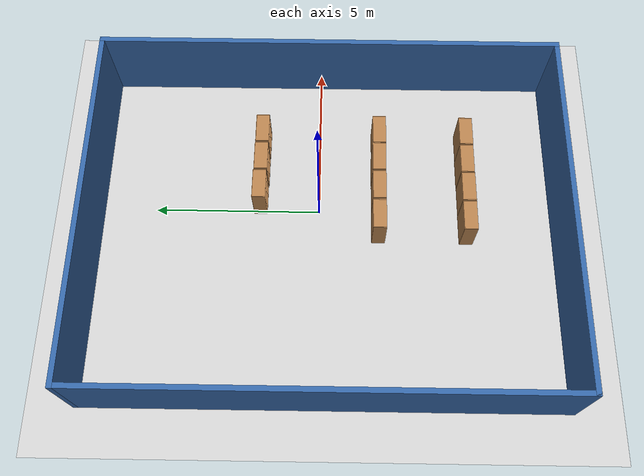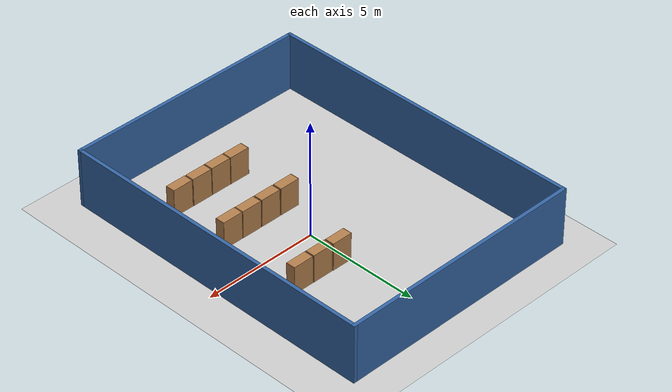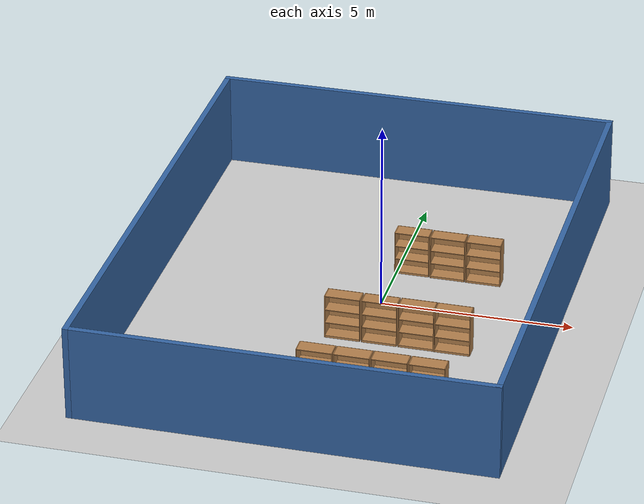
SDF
<sdf version="1.6">
 <world name="default">
  <model name="ground_plane">
   <static>1</static>
   <link name="link">
    <collision name="collision">
     <geometry><plane><normal>0 0 1</normal><size>100 100</size></plane></geometry>
     <surface><friction><ode><mu>100</mu><mu2>50</mu2></ode></friction></surface>
    </collision>
    <visual name="visual">
     <cast_shadows>0</cast_shadows>
     <geometry><plane><normal>0 0 1</normal><size>100 100</size></plane></geometry>
     <material>
      <script><uri>file://media/materials/scripts/gazebo.material</uri><name>Gazebo/Grey</name></script>
     </material>
    </visual>
   </link>
  </model>
  <model name="blue_shop">
   <pose>-0.705855 -0.24083 0 0 -0 0</pose>
   <link name="Wall_2">
    <collision name="Wall_2_Collision">
     <geometry><box><size>10.75 0.15 2.5</size></box></geometry>
     <pose>0 0 1.25 0 -0 0</pose>
    </collision>
    <visual name="Wall_2_Visual">
     <pose>0 0 1.25 0 -0 0</pose>
     <geometry><box><size>10.75 0.15 2.5</size></box></geometry>
     <material>
      <script><uri>file://media/materials/scripts/gazebo.material</uri><name>Gazebo/Grey</name></script>
      <ambient>0.203922 0.396078 0.643137 1</ambient>
     </material>
     <meta><layer>0</layer></meta>
    </visual>
    <pose>-0 6.925 0 0 -0 3.14159</pose>
   </link>
   <link name="Wall_3">
    <collision name="Wall_3_Collision">
     <geometry><box><size>14 0.15 2.5</size></box></geometry>
     <pose>0 0 1.25 0 -0 0</pose>
    </collision>
    <visual name="Wall_3_Visual">
     <pose>0 0 1.25 0 -0 0</pose>
     <geometry><box><size>14 0.15 2.5</size></box></geometry>
     <material>
      <script><uri>file://media/materials/scripts/gazebo.material</uri><name>Gazebo/Grey</name></script>
      <ambient>0.203922 0.396078 0.643137 1</ambient>
     </material>
     <meta><layer>0</layer></meta>
    </visual>
    <pose>-5.3 0 0 0 -0 -1.5708</pose>
   </link>
   <link name="Wall_6">
    <collision name="Wall_6_Collision">
     <geometry><box><size>14 0.15 2.5</size></box></geometry>
     <pose>0 0 1.25 0 -0 0</pose>
    </collision>
    <visual name="Wall_6_Visual">
     <pose>0 0 1.25 0 -0 0</pose>
     <geometry><box><size>14 0.15 2.5</size></box></geometry>
     <material>
      <script><uri>file://media/materials/scripts/gazebo.material</uri><name>Gazebo/Grey</name></script>
      <ambient>0.203922 0.396078 0.643137 1</ambient>
     </material>
     <meta><layer>0</layer></meta>
    </visual>
    <pose>5.3 0 0 0 -0 -1.5708</pose>
   </link>
   <link name="Wall_7">
    <collision name="Wall_7_Collision">
     <geometry><box><size>10.75 0.15 2.5</size></box></geometry>
     <pose>0 0 1.25 0 -0 0</pose>
    </collision>
    <visual name="Wall_7_Visual">
     <pose>0 0 1.25 0 -0 0</pose>
     <geometry><box><size>10.75 0.15 2.5</size></box></geometry>
     <material>
      <script><uri>file://media/materials/scripts/gazebo.material</uri><name>Gazebo/Grey</name></script>
      <ambient>0.203922 0.396078 0.643137 1</ambient>
     </material>
     <meta><layer>0</layer></meta>
    </visual>
    <pose>-0 -6.925 0 0 -0 3.14159</pose>
   </link>
   <static>1</static>
  </model>
  <model name="bookshelf_3_clone_0">
   <static>1</static>
   <link name="link">
    <inertial><mass>1</mass></inertial>
    <collision name="back">
     <pose>0 0.005 0.6 0 -0 0</pose>
     <geometry><box><size>0.9 0.01 1.2</size></box></geometry>
    </collision>
    <visual name="visual1">
     <pose>0 0.005 0.6 0 -0 0</pose>
     <geometry><box><size>0.9 0.01 1.2</size></box></geometry>
     <material>
      <script><uri>file://media/materials/scripts/gazebo.material</uri><name>Gazebo/Wood</name></script>
     </material>
    </visual>
    <collision name="left_side">
     <pose>0.45 -0.195 0.6 0 -0 0</pose>
     <geometry><box><size>0.02 0.4 1.2</size></box></geometry>
    </collision>
    <visual name="visual2">
     <pose>0.45 -0.195 0.6 0 -0 0</pose>
     <geometry><box><size>0.02 0.4 1.2</size></box></geometry>
     <material>
      <script><uri>file://media/materials/scripts/gazebo.material</uri><name>Gazebo/Wood</name></script>
     </material>
    </visual>
    <collision name="right_side">
     <pose>-0.45 -0.195 0.6 0 -0 0</pose>
     <geometry><box><size>0.02 0.4 1.2</size></box></geometry>
    </collision>
    <visual name="visual3">
     <pose>-0.45 -0.195 0.6 0 -0 0</pose>
     <geometry><box><size>0.02 0.4 1.2</size></box></geometry>
     <material>
      <script><uri>file://media/materials/scripts/gazebo.material</uri><name>Gazebo/Wood</name></script>
     </material>
    </visual>
    <collision name="bottom">
     <pose>0 -0.195 0.03 0 -0 0</pose>
     <geometry><box><size>0.88 0.4 0.06</size></box></geometry>
    </collision>
    <visual name="visual4">
     <pose>0 -0.195 0.03 0 -0 0</pose>
     <geometry><box><size>0.88 0.4 0.06</size></box></geometry>
     <material>
      <script><uri>file://media/materials/scripts/gazebo.material</uri><name>Gazebo/Wood</name></script>
     </material>
    </visual>
    <collision name="top">
     <pose>0 -0.195 1.19 0 -0 0</pose>
     <geometry><box><size>0.88 0.4 0.02</size></box></geometry>
    </collision>
    <visual name="visual5">
     <pose>0 -0.195 1.19 0 -0 0</pose>
     <geometry><box><size>0.88 0.4 0.02</size></box></geometry>
     <material>
      <script><uri>file://media/materials/scripts/gazebo.material</uri><name>Gazebo/Wood</name></script>
     </material>
    </visual>
    <collision name="low_shelf">
     <pose>0 -0.195 0.43 0 -0 0</pose>
     <geometry><box><size>0.88 0.4 0.02</size></box></geometry>
    </collision>
    <visual name="visual6">
     <pose>0 -0.195 0.43 0 -0 0</pose>
     <geometry><box><size>0.88 0.4 0.02</size></box></geometry>
     <material>
      <script><uri>file://media/materials/scripts/gazebo.material</uri><name>Gazebo/Wood</name></script>
     </material>
    </visual>
    <collision name="high_shelf">
     <pose>0 -0.195 0.8 0 -0 0</pose>
     <geometry><box><size>0.88 0.4 0.02</size></box></geometry>
    </collision>
    <visual name="visual7">
     <pose>0 -0.195 0.8 0 -0 0</pose>
     <geometry><box><size>0.88 0.4 0.02</size></box></geometry>
     <material>
      <script><uri>file://media/materials/scripts/gazebo.material</uri><name>Gazebo/Wood</name></script>
     </material>
    </visual>
   </link>
   <pose>0.403486 1.98927 0 0 -0 0</pose>
  </model>
  <model name="bookshelf_3_clone_1">
   <static>1</static>
   <link name="link">
    <inertial><mass>1</mass></inertial>
    <collision name="back">
     <pose>0 0.005 0.6 0 -0 0</pose>
     <geometry><box><size>0.9 0.01 1.2</size></box></geometry>
    </collision>
    <visual name="visual1">
     <pose>0 0.005 0.6 0 -0 0</pose>
     <geometry><box><size>0.9 0.01 1.2</size></box></geometry>
     <material>
      <script><uri>file://media/materials/scripts/gazebo.material</uri><name>Gazebo/Wood</name></script>
     </material>
    </visual>
    <collision name="left_side">
     <pose>0.45 -0.195 0.6 0 -0 0</pose>
     <geometry><box><size>0.02 0.4 1.2</size></box></geometry>
    </collision>
    <visual name="visual2">
     <pose>0.45 -0.195 0.6 0 -0 0</pose>
     <geometry><box><size>0.02 0.4 1.2</size></box></geometry>
     <material>
      <script><uri>file://media/materials/scripts/gazebo.material</uri><name>Gazebo/Wood</name></script>
     </material>
    </visual>
    <collision name="right_side">
     <pose>-0.45 -0.195 0.6 0 -0 0</pose>
     <geometry><box><size>0.02 0.4 1.2</size></box></geometry>
    </collision>
    <visual name="visual3">
     <pose>-0.45 -0.195 0.6 0 -0 0</pose>
     <geometry><box><size>0.02 0.4 1.2</size></box></geometry>
     <material>
      <script><uri>file://media/materials/scripts/gazebo.material</uri><name>Gazebo/Wood</name></script>
     </material>
    </visual>
    <collision name="bottom">
     <pose>0 -0.195 0.03 0 -0 0</pose>
     <geometry><box><size>0.88 0.4 0.06</size></box></geometry>
    </collision>
    <visual name="visual4">
     <pose>0 -0.195 0.03 0 -0 0</pose>
     <geometry><box><size>0.88 0.4 0.06</size></box></geometry>
     <material>
      <script><uri>file://media/materials/scripts/gazebo.material</uri><name>Gazebo/Wood</name></script>
     </material>
    </visual>
    <collision name="top">
     <pose>0 -0.195 1.19 0 -0 0</pose>
     <geometry><box><size>0.88 0.4 0.02</size></box></geometry>
    </collision>
    <visual name="visual5">
     <pose>0 -0.195 1.19 0 -0 0</pose>
     <geometry><box><size>0.88 0.4 0.02</size></box></geometry>
     <material>
      <script><uri>file://media/materials/scripts/gazebo.material</uri><name>Gazebo/Wood</name></script>
     </material>
    </visual>
    <collision name="low_shelf">
     <pose>0 -0.195 0.43 0 -0 0</pose>
     <geometry><box><size>0.88 0.4 0.02</size></box></geometry>
    </collision>
    <visual name="visual6">
     <pose>0 -0.195 0.43 0 -0 0</pose>
     <geometry><box><size>0.88 0.4 0.02</size></box></geometry>
     <material>
      <script><uri>file://media/materials/scripts/gazebo.material</uri><name>Gazebo/Wood</name></script>
     </material>
    </visual>
    <collision name="high_shelf">
     <pose>0 -0.195 0.8 0 -0 0</pose>
     <geometry><box><size>0.88 0.4 0.02</size></box></geometry>
    </collision>
    <visual name="visual7">
     <pose>0 -0.195 0.8 0 -0 0</pose>
     <geometry><box><size>0.88 0.4 0.02</size></box></geometry>
     <material>
      <script><uri>file://media/materials/scripts/gazebo.material</uri><name>Gazebo/Wood</name></script>
     </material>
    </visual>
   </link>
   <pose>1.35521 1.97356 0 0 -0 0</pose>
  </model>
  <model name="bookshelf_3_clone_2">
   <static>1</static>
   <link name="link">
    <inertial><mass>1</mass></inertial>
    <collision name="back">
     <pose>0 0.005 0.6 0 -0 0</pose>
     <geometry><box><size>0.9 0.01 1.2</size></box></geometry>
    </collision>
    <visual name="visual1">
     <pose>0 0.005 0.6 0 -0 0</pose>
     <geometry><box><size>0.9 0.01 1.2</size></box></geometry>
     <material>
      <script><uri>file://media/materials/scripts/gazebo.material</uri><name>Gazebo/Wood</name></script>
     </material>
    </visual>
    <collision name="left_side">
     <pose>0.45 -0.195 0.6 0 -0 0</pose>
     <geometry><box><size>0.02 0.4 1.2</size></box></geometry>
    </collision>
    <visual name="visual2">
     <pose>0.45 -0.195 0.6 0 -0 0</pose>
     <geometry><box><size>0.02 0.4 1.2</size></box></geometry>
     <material>
      <script><uri>file://media/materials/scripts/gazebo.material</uri><name>Gazebo/Wood</name></script>
     </material>
    </visual>
    <collision name="right_side">
     <pose>-0.45 -0.195 0.6 0 -0 0</pose>
     <geometry><box><size>0.02 0.4 1.2</size></box></geometry>
    </collision>
    <visual name="visual3">
     <pose>-0.45 -0.195 0.6 0 -0 0</pose>
     <geometry><box><size>0.02 0.4 1.2</size></box></geometry>
     <material>
      <script><uri>file://media/materials/scripts/gazebo.material</uri><name>Gazebo/Wood</name></script>
     </material>
    </visual>
    <collision name="bottom">
     <pose>0 -0.195 0.03 0 -0 0</pose>
     <geometry><box><size>0.88 0.4 0.06</size></box></geometry>
    </collision>
    <visual name="visual4">
     <pose>0 -0.195 0.03 0 -0 0</pose>
     <geometry><box><size>0.88 0.4 0.06</size></box></geometry>
     <material>
      <script><uri>file://media/materials/scripts/gazebo.material</uri><name>Gazebo/Wood</name></script>
     </material>
    </visual>
    <collision name="top">
     <pose>0 -0.195 1.19 0 -0 0</pose>
     <geometry><box><size>0.88 0.4 0.02</size></box></geometry>
    </collision>
    <visual name="visual5">
     <pose>0 -0.195 1.19 0 -0 0</pose>
     <geometry><box><size>0.88 0.4 0.02</size></box></geometry>
     <material>
      <script><uri>file://media/materials/scripts/gazebo.material</uri><name>Gazebo/Wood</name></script>
     </material>
    </visual>
    <collision name="low_shelf">
     <pose>0 -0.195 0.43 0 -0 0</pose>
     <geometry><box><size>0.88 0.4 0.02</size></box></geometry>
    </collision>
    <visual name="visual6">
     <pose>0 -0.195 0.43 0 -0 0</pose>
     <geometry><box><size>0.88 0.4 0.02</size></box></geometry>
     <material>
      <script><uri>file://media/materials/scripts/gazebo.material</uri><name>Gazebo/Wood</name></script>
     </material>
    </visual>
    <collision name="high_shelf">
     <pose>0 -0.195 0.8 0 -0 0</pose>
     <geometry><box><size>0.88 0.4 0.02</size></box></geometry>
    </collision>
    <visual name="visual7">
     <pose>0 -0.195 0.8 0 -0 0</pose>
     <geometry><box><size>0.88 0.4 0.02</size></box></geometry>
     <material>
      <script><uri>file://media/materials/scripts/gazebo.material</uri><name>Gazebo/Wood</name></script>
     </material>
    </visual>
   </link>
   <pose>2.30568 1.96612 0 0 -0 0</pose>
  </model>
  <model name="bookshelf_3_clone_3">
   <static>1</static>
   <link name="link">
    <inertial><mass>1</mass></inertial>
    <collision name="back">
     <pose>0 0.005 0.6 0 -0 0</pose>
     <geometry><box><size>0.9 0.01 1.2</size></box></geometry>
    </collision>
    <visual name="visual1">
     <pose>0 0.005 0.6 0 -0 0</pose>
     <geometry><box><size>0.9 0.01 1.2</size></box></geometry>
     <material>
      <script><uri>file://media/materials/scripts/gazebo.material</uri><name>Gazebo/Wood</name></script>
     </material>
    </visual>
    <collision name="left_side">
     <pose>0.45 -0.195 0.6 0 -0 0</pose>
     <geometry><box><size>0.02 0.4 1.2</size></box></geometry>
    </collision>
    <visual name="visual2">
     <pose>0.45 -0.195 0.6 0 -0 0</pose>
     <geometry><box><size>0.02 0.4 1.2</size></box></geometry>
     <material>
      <script><uri>file://media/materials/scripts/gazebo.material</uri><name>Gazebo/Wood</name></script>
     </material>
    </visual>
    <collision name="right_side">
     <pose>-0.45 -0.195 0.6 0 -0 0</pose>
     <geometry><box><size>0.02 0.4 1.2</size></box></geometry>
    </collision>
    <visual name="visual3">
     <pose>-0.45 -0.195 0.6 0 -0 0</pose>
     <geometry><box><size>0.02 0.4 1.2</size></box></geometry>
     <material>
      <script><uri>file://media/materials/scripts/gazebo.material</uri><name>Gazebo/Wood</name></script>
     </material>
    </visual>
    <collision name="bottom">
     <pose>0 -0.195 0.03 0 -0 0</pose>
     <geometry><box><size>0.88 0.4 0.06</size></box></geometry>
    </collision>
    <visual name="visual4">
     <pose>0 -0.195 0.03 0 -0 0</pose>
     <geometry><box><size>0.88 0.4 0.06</size></box></geometry>
     <material>
      <script><uri>file://media/materials/scripts/gazebo.material</uri><name>Gazebo/Wood</name></script>
     </material>
    </visual>
    <collision name="top">
     <pose>0 -0.195 1.19 0 -0 0</pose>
     <geometry><box><size>0.88 0.4 0.02</size></box></geometry>
    </collision>
    <visual name="visual5">
     <pose>0 -0.195 1.19 0 -0 0</pose>
     <geometry><box><size>0.88 0.4 0.02</size></box></geometry>
     <material>
      <script><uri>file://media/materials/scripts/gazebo.material</uri><name>Gazebo/Wood</name></script>
     </material>
    </visual>
    <collision name="low_shelf">
     <pose>0 -0.195 0.43 0 -0 0</pose>
     <geometry><box><size>0.88 0.4 0.02</size></box></geometry>
    </collision>
    <visual name="visual6">
     <pose>0 -0.195 0.43 0 -0 0</pose>
     <geometry><box><size>0.88 0.4 0.02</size></box></geometry>
     <material>
      <script><uri>file://media/materials/scripts/gazebo.material</uri><name>Gazebo/Wood</name></script>
     </material>
    </visual>
    <collision name="high_shelf">
     <pose>0 -0.195 0.8 0 -0 0</pose>
     <geometry><box><size>0.88 0.4 0.02</size></box></geometry>
    </collision>
    <visual name="visual7">
     <pose>0 -0.195 0.8 0 -0 0</pose>
     <geometry><box><size>0.88 0.4 0.02</size></box></geometry>
     <material>
      <script><uri>file://media/materials/scripts/gazebo.material</uri><name>Gazebo/Wood</name></script>
     </material>
    </visual>
   </link>
   <pose>-0.527381 -1.61565 0 0 -0 0</pose>
  </model>
  <model name="bookshelf_3_clone_4">
   <static>1</static>
   <link name="link">
    <inertial><mass>1</mass></inertial>
    <collision name="back">
     <pose>0 0.005 0.6 0 -0 0</pose>
     <geometry><box><size>0.9 0.01 1.2</size></box></geometry>
    </collision>
    <visual name="visual1">
     <pose>0 0.005 0.6 0 -0 0</pose>
     <geometry><box><size>0.9 0.01 1.2</size></box></geometry>
     <material>
      <script><uri>file://media/materials/scripts/gazebo.material</uri><name>Gazebo/Wood</name></script>
     </material>
    </visual>
    <collision name="left_side">
     <pose>0.45 -0.195 0.6 0 -0 0</pose>
     <geometry><box><size>0.02 0.4 1.2</size></box></geometry>
    </collision>
    <visual name="visual2">
     <pose>0.45 -0.195 0.6 0 -0 0</pose>
     <geometry><box><size>0.02 0.4 1.2</size></box></geometry>
     <material>
      <script><uri>file://media/materials/scripts/gazebo.material</uri><name>Gazebo/Wood</name></script>
     </material>
    </visual>
    <collision name="right_side">
     <pose>-0.45 -0.195 0.6 0 -0 0</pose>
     <geometry><box><size>0.02 0.4 1.2</size></box></geometry>
    </collision>
    <visual name="visual3">
     <pose>-0.45 -0.195 0.6 0 -0 0</pose>
     <geometry><box><size>0.02 0.4 1.2</size></box></geometry>
     <material>
      <script><uri>file://media/materials/scripts/gazebo.material</uri><name>Gazebo/Wood</name></script>
     </material>
    </visual>
    <collision name="bottom">
     <pose>0 -0.195 0.03 0 -0 0</pose>
     <geometry><box><size>0.88 0.4 0.06</size></box></geometry>
    </collision>
    <visual name="visual4">
     <pose>0 -0.195 0.03 0 -0 0</pose>
     <geometry><box><size>0.88 0.4 0.06</size></box></geometry>
     <material>
      <script><uri>file://media/materials/scripts/gazebo.material</uri><name>Gazebo/Wood</name></script>
     </material>
    </visual>
    <collision name="top">
     <pose>0 -0.195 1.19 0 -0 0</pose>
     <geometry><box><size>0.88 0.4 0.02</size></box></geometry>
    </collision>
    <visual name="visual5">
     <pose>0 -0.195 1.19 0 -0 0</pose>
     <geometry><box><size>0.88 0.4 0.02</size></box></geometry>
     <material>
      <script><uri>file://media/materials/scripts/gazebo.material</uri><name>Gazebo/Wood</name></script>
     </material>
    </visual>
    <collision name="low_shelf">
     <pose>0 -0.195 0.43 0 -0 0</pose>
     <geometry><box><size>0.88 0.4 0.02</size></box></geometry>
    </collision>
    <visual name="visual6">
     <pose>0 -0.195 0.43 0 -0 0</pose>
     <geometry><box><size>0.88 0.4 0.02</size></box></geometry>
     <material>
      <script><uri>file://media/materials/scripts/gazebo.material</uri><name>Gazebo/Wood</name></script>
     </material>
    </visual>
    <collision name="high_shelf">
     <pose>0 -0.195 0.8 0 -0 0</pose>
     <geometry><box><size>0.88 0.4 0.02</size></box></geometry>
    </collision>
    <visual name="visual7">
     <pose>0 -0.195 0.8 0 -0 0</pose>
     <geometry><box><size>0.88 0.4 0.02</size></box></geometry>
     <material>
      <script><uri>file://media/materials/scripts/gazebo.material</uri><name>Gazebo/Wood</name></script>
     </material>
    </visual>
   </link>
   <pose>0.429459 -1.61727 0 0 -0 0</pose>
  </model>
  <model name="bookshelf_3_clone_5">
   <static>1</static>
   <link name="link">
    <inertial><mass>1</mass></inertial>
    <collision name="back">
     <pose>0 0.005 0.6 0 -0 0</pose>
     <geometry><box><size>0.9 0.01 1.2</size></box></geometry>
    </collision>
    <visual name="visual1">
     <pose>0 0.005 0.6 0 -0 0</pose>
     <geometry><box><size>0.9 0.01 1.2</size></box></geometry>
     <material>
      <script><uri>file://media/materials/scripts/gazebo.material</uri><name>Gazebo/Wood</name></script>
     </material>
    </visual>
    <collision name="left_side">
     <pose>0.45 -0.195 0.6 0 -0 0</pose>
     <geometry><box><size>0.02 0.4 1.2</size></box></geometry>
    </collision>
    <visual name="visual2">
     <pose>0.45 -0.195 0.6 0 -0 0</pose>
     <geometry><box><size>0.02 0.4 1.2</size></box></geometry>
     <material>
      <script><uri>file://media/materials/scripts/gazebo.material</uri><name>Gazebo/Wood</name></script>
     </material>
    </visual>
    <collision name="right_side">
     <pose>-0.45 -0.195 0.6 0 -0 0</pose>
     <geometry><box><size>0.02 0.4 1.2</size></box></geometry>
    </collision>
    <visual name="visual3">
     <pose>-0.45 -0.195 0.6 0 -0 0</pose>
     <geometry><box><size>0.02 0.4 1.2</size></box></geometry>
     <material>
      <script><uri>file://media/materials/scripts/gazebo.material</uri><name>Gazebo/Wood</name></script>
     </material>
    </visual>
    <collision name="bottom">
     <pose>0 -0.195 0.03 0 -0 0</pose>
     <geometry><box><size>0.88 0.4 0.06</size></box></geometry>
    </collision>
    <visual name="visual4">
     <pose>0 -0.195 0.03 0 -0 0</pose>
     <geometry><box><size>0.88 0.4 0.06</size></box></geometry>
     <material>
      <script><uri>file://media/materials/scripts/gazebo.material</uri><name>Gazebo/Wood</name></script>
     </material>
    </visual>
    <collision name="top">
     <pose>0 -0.195 1.19 0 -0 0</pose>
     <geometry><box><size>0.88 0.4 0.02</size></box></geometry>
    </collision>
    <visual name="visual5">
     <pose>0 -0.195 1.19 0 -0 0</pose>
     <geometry><box><size>0.88 0.4 0.02</size></box></geometry>
     <material>
      <script><uri>file://media/materials/scripts/gazebo.material</uri><name>Gazebo/Wood</name></script>
     </material>
    </visual>
    <collision name="low_shelf">
     <pose>0 -0.195 0.43 0 -0 0</pose>
     <geometry><box><size>0.88 0.4 0.02</size></box></geometry>
    </collision>
    <visual name="visual6">
     <pose>0 -0.195 0.43 0 -0 0</pose>
     <geometry><box><size>0.88 0.4 0.02</size></box></geometry>
     <material>
      <script><uri>file://media/materials/scripts/gazebo.material</uri><name>Gazebo/Wood</name></script>
     </material>
    </visual>
    <collision name="high_shelf">
     <pose>0 -0.195 0.8 0 -0 0</pose>
     <geometry><box><size>0.88 0.4 0.02</size></box></geometry>
    </collision>
    <visual name="visual7">
     <pose>0 -0.195 0.8 0 -0 0</pose>
     <geometry><box><size>0.88 0.4 0.02</size></box></geometry>
     <material>
      <script><uri>file://media/materials/scripts/gazebo.material</uri><name>Gazebo/Wood</name></script>
     </material>
    </visual>
   </link>
   <pose>1.37902 -1.61761 0 0 -0 0</pose>
  </model>
  <model name="bookshelf_3_clone_6">
   <static>1</static>
   <link name="link">
    <inertial><mass>1</mass></inertial>
    <collision name="back">
     <pose>0 0.005 0.6 0 -0 0</pose>
     <geometry><box><size>0.9 0.01 1.2</size></box></geometry>
    </collision>
    <visual name="visual1">
     <pose>0 0.005 0.6 0 -0 0</pose>
     <geometry><box><size>0.9 0.01 1.2</size></box></geometry>
     <material>
      <script><uri>file://media/materials/scripts/gazebo.material</uri><name>Gazebo/Wood</name></script>
     </material>
    </visual>
    <collision name="left_side">
     <pose>0.45 -0.195 0.6 0 -0 0</pose>
     <geometry><box><size>0.02 0.4 1.2</size></box></geometry>
    </collision>
    <visual name="visual2">
     <pose>0.45 -0.195 0.6 0 -0 0</pose>
     <geometry><box><size>0.02 0.4 1.2</size></box></geometry>
     <material>
      <script><uri>file://media/materials/scripts/gazebo.material</uri><name>Gazebo/Wood</name></script>
     </material>
    </visual>
    <collision name="right_side">
     <pose>-0.45 -0.195 0.6 0 -0 0</pose>
     <geometry><box><size>0.02 0.4 1.2</size></box></geometry>
    </collision>
    <visual name="visual3">
     <pose>-0.45 -0.195 0.6 0 -0 0</pose>
     <geometry><box><size>0.02 0.4 1.2</size></box></geometry>
     <material>
      <script><uri>file://media/materials/scripts/gazebo.material</uri><name>Gazebo/Wood</name></script>
     </material>
    </visual>
    <collision name="bottom">
     <pose>0 -0.195 0.03 0 -0 0</pose>
     <geometry><box><size>0.88 0.4 0.06</size></box></geometry>
    </collision>
    <visual name="visual4">
     <pose>0 -0.195 0.03 0 -0 0</pose>
     <geometry><box><size>0.88 0.4 0.06</size></box></geometry>
     <material>
      <script><uri>file://media/materials/scripts/gazebo.material</uri><name>Gazebo/Wood</name></script>
     </material>
    </visual>
    <collision name="top">
     <pose>0 -0.195 1.19 0 -0 0</pose>
     <geometry><box><size>0.88 0.4 0.02</size></box></geometry>
    </collision>
    <visual name="visual5">
     <pose>0 -0.195 1.19 0 -0 0</pose>
     <geometry><box><size>0.88 0.4 0.02</size></box></geometry>
     <material>
      <script><uri>file://media/materials/scripts/gazebo.material</uri><name>Gazebo/Wood</name></script>
     </material>
    </visual>
    <collision name="low_shelf">
     <pose>0 -0.195 0.43 0 -0 0</pose>
     <geometry><box><size>0.88 0.4 0.02</size></box></geometry>
    </collision>
    <visual name="visual6">
     <pose>0 -0.195 0.43 0 -0 0</pose>
     <geometry><box><size>0.88 0.4 0.02</size></box></geometry>
     <material>
      <script><uri>file://media/materials/scripts/gazebo.material</uri><name>Gazebo/Wood</name></script>
     </material>
    </visual>
    <collision name="high_shelf">
     <pose>0 -0.195 0.8 0 -0 0</pose>
     <geometry><box><size>0.88 0.4 0.02</size></box></geometry>
    </collision>
    <visual name="visual7">
     <pose>0 -0.195 0.8 0 -0 0</pose>
     <geometry><box><size>0.88 0.4 0.02</size></box></geometry>
     <material>
      <script><uri>file://media/materials/scripts/gazebo.material</uri><name>Gazebo/Wood</name></script>
     </material>
    </visual>
   </link>
   <pose>2.31077 -1.62708 0 0 -0 0</pose>
  </model>
  <model name="bookshelf_3_clone_7">
   <static>1</static>
   <link name="link">
    <inertial><mass>1</mass></inertial>
    <collision name="back">
     <pose>0 0.005 0.6 0 -0 0</pose>
     <geometry><box><size>0.9 0.01 1.2</size></box></geometry>
    </collision>
    <visual name="visual1">
     <pose>0 0.005 0.6 0 -0 0</pose>
     <geometry><box><size>0.9 0.01 1.2</size></box></geometry>
     <material>
      <script><uri>file://media/materials/scripts/gazebo.material</uri><name>Gazebo/Wood</name></script>
     </material>
    </visual>
    <collision name="left_side">
     <pose>0.45 -0.195 0.6 0 -0 0</pose>
     <geometry><box><size>0.02 0.4 1.2</size></box></geometry>
    </collision>
    <visual name="visual2">
     <pose>0.45 -0.195 0.6 0 -0 0</pose>
     <geometry><box><size>0.02 0.4 1.2</size></box></geometry>
     <material>
      <script><uri>file://media/materials/scripts/gazebo.material</uri><name>Gazebo/Wood</name></script>
     </material>
    </visual>
    <collision name="right_side">
     <pose>-0.45 -0.195 0.6 0 -0 0</pose>
     <geometry><box><size>0.02 0.4 1.2</size></box></geometry>
    </collision>
    <visual name="visual3">
     <pose>-0.45 -0.195 0.6 0 -0 0</pose>
     <geometry><box><size>0.02 0.4 1.2</size></box></geometry>
     <material>
      <script><uri>file://media/materials/scripts/gazebo.material</uri><name>Gazebo/Wood</name></script>
     </material>
    </visual>
    <collision name="bottom">
     <pose>0 -0.195 0.03 0 -0 0</pose>
     <geometry><box><size>0.88 0.4 0.06</size></box></geometry>
    </collision>
    <visual name="visual4">
     <pose>0 -0.195 0.03 0 -0 0</pose>
     <geometry><box><size>0.88 0.4 0.06</size></box></geometry>
     <material>
      <script><uri>file://media/materials/scripts/gazebo.material</uri><name>Gazebo/Wood</name></script>
     </material>
    </visual>
    <collision name="top">
     <pose>0 -0.195 1.19 0 -0 0</pose>
     <geometry><box><size>0.88 0.4 0.02</size></box></geometry>
    </collision>
    <visual name="visual5">
     <pose>0 -0.195 1.19 0 -0 0</pose>
     <geometry><box><size>0.88 0.4 0.02</size></box></geometry>
     <material>
      <script><uri>file://media/materials/scripts/gazebo.material</uri><name>Gazebo/Wood</name></script>
     </material>
    </visual>
    <collision name="low_shelf">
     <pose>0 -0.195 0.43 0 -0 0</pose>
     <geometry><box><size>0.88 0.4 0.02</size></box></geometry>
    </collision>
    <visual name="visual6">
     <pose>0 -0.195 0.43 0 -0 0</pose>
     <geometry><box><size>0.88 0.4 0.02</size></box></geometry>
     <material>
      <script><uri>file://media/materials/scripts/gazebo.material</uri><name>Gazebo/Wood</name></script>
     </material>
    </visual>
    <collision name="high_shelf">
     <pose>0 -0.195 0.8 0 -0 0</pose>
     <geometry><box><size>0.88 0.4 0.02</size></box></geometry>
    </collision>
    <visual name="visual7">
     <pose>0 -0.195 0.8 0 -0 0</pose>
     <geometry><box><size>0.88 0.4 0.02</size></box></geometry>
     <material>
      <script><uri>file://media/materials/scripts/gazebo.material</uri><name>Gazebo/Wood</name></script>
     </material>
    </visual>
   </link>
   <pose>-0.5435 -4.2758 0 0 -0 0</pose>
  </model>
  <model name="bookshelf_3_clone_8">
   <static>1</static>
   <link name="link">
    <inertial><mass>1</mass></inertial>
    <collision name="back">
     <pose>0 0.005 0.6 0 -0 0</pose>
     <geometry><box><size>0.9 0.01 1.2</size></box></geometry>
    </collision>
    <visual name="visual1">
     <pose>0 0.005 0.6 0 -0 0</pose>
     <geometry><box><size>0.9 0.01 1.2</size></box></geometry>
     <material>
      <script><uri>file://media/materials/scripts/gazebo.material</uri><name>Gazebo/Wood</name></script>
     </material>
    </visual>
    <collision name="left_side">
     <pose>0.45 -0.195 0.6 0 -0 0</pose>
     <geometry><box><size>0.02 0.4 1.2</size></box></geometry>
    </collision>
    <visual name="visual2">
     <pose>0.45 -0.195 0.6 0 -0 0</pose>
     <geometry><box><size>0.02 0.4 1.2</size></box></geometry>
     <material>
      <script><uri>file://media/materials/scripts/gazebo.material</uri><name>Gazebo/Wood</name></script>
     </material>
    </visual>
    <collision name="right_side">
     <pose>-0.45 -0.195 0.6 0 -0 0</pose>
     <geometry><box><size>0.02 0.4 1.2</size></box></geometry>
    </collision>
    <visual name="visual3">
     <pose>-0.45 -0.195 0.6 0 -0 0</pose>
     <geometry><box><size>0.02 0.4 1.2</size></box></geometry>
     <material>
      <script><uri>file://media/materials/scripts/gazebo.material</uri><name>Gazebo/Wood</name></script>
     </material>
    </visual>
    <collision name="bottom">
     <pose>0 -0.195 0.03 0 -0 0</pose>
     <geometry><box><size>0.88 0.4 0.06</size></box></geometry>
    </collision>
    <visual name="visual4">
     <pose>0 -0.195 0.03 0 -0 0</pose>
     <geometry><box><size>0.88 0.4 0.06</size></box></geometry>
     <material>
      <script><uri>file://media/materials/scripts/gazebo.material</uri><name>Gazebo/Wood</name></script>
     </material>
    </visual>
    <collision name="top">
     <pose>0 -0.195 1.19 0 -0 0</pose>
     <geometry><box><size>0.88 0.4 0.02</size></box></geometry>
    </collision>
    <visual name="visual5">
     <pose>0 -0.195 1.19 0 -0 0</pose>
     <geometry><box><size>0.88 0.4 0.02</size></box></geometry>
     <material>
      <script><uri>file://media/materials/scripts/gazebo.material</uri><name>Gazebo/Wood</name></script>
     </material>
    </visual>
    <collision name="low_shelf">
     <pose>0 -0.195 0.43 0 -0 0</pose>
     <geometry><box><size>0.88 0.4 0.02</size></box></geometry>
    </collision>
    <visual name="visual6">
     <pose>0 -0.195 0.43 0 -0 0</pose>
     <geometry><box><size>0.88 0.4 0.02</size></box></geometry>
     <material>
      <script><uri>file://media/materials/scripts/gazebo.material</uri><name>Gazebo/Wood</name></script>
     </material>
    </visual>
    <collision name="high_shelf">
     <pose>0 -0.195 0.8 0 -0 0</pose>
     <geometry><box><size>0.88 0.4 0.02</size></box></geometry>
    </collision>
    <visual name="visual7">
     <pose>0 -0.195 0.8 0 -0 0</pose>
     <geometry><box><size>0.88 0.4 0.02</size></box></geometry>
     <material>
      <script><uri>file://media/materials/scripts/gazebo.material</uri><name>Gazebo/Wood</name></script>
     </material>
    </visual>
   </link>
   <pose>0.394798 -4.27935 0 0 -0 0</pose>
  </model>
  <model name="bookshelf_3_clone_9">
   <static>1</static>
   <link name="link">
    <inertial><mass>1</mass></inertial>
    <collision name="back">
     <pose>0 0.005 0.6 0 -0 0</pose>
     <geometry><box><size>0.9 0.01 1.2</size></box></geometry>
    </collision>
    <visual name="visual1">
     <pose>0 0.005 0.6 0 -0 0</pose>
     <geometry><box><size>0.9 0.01 1.2</size></box></geometry>
     <material>
      <script><uri>file://media/materials/scripts/gazebo.material</uri><name>Gazebo/Wood</name></script>
     </material>
    </visual>
    <collision name="left_side">
     <pose>0.45 -0.195 0.6 0 -0 0</pose>
     <geometry><box><size>0.02 0.4 1.2</size></box></geometry>
    </collision>
    <visual name="visual2">
     <pose>0.45 -0.195 0.6 0 -0 0</pose>
     <geometry><box><size>0.02 0.4 1.2</size></box></geometry>
     <material>
      <script><uri>file://media/materials/scripts/gazebo.material</uri><name>Gazebo/Wood</name></script>
     </material>
    </visual>
    <collision name="right_side">
     <pose>-0.45 -0.195 0.6 0 -0 0</pose>
     <geometry><box><size>0.02 0.4 1.2</size></box></geometry>
    </collision>
    <visual name="visual3">
     <pose>-0.45 -0.195 0.6 0 -0 0</pose>
     <geometry><box><size>0.02 0.4 1.2</size></box></geometry>
     <material>
      <script><uri>file://media/materials/scripts/gazebo.material</uri><name>Gazebo/Wood</name></script>
     </material>
    </visual>
    <collision name="bottom">
     <pose>0 -0.195 0.03 0 -0 0</pose>
     <geometry><box><size>0.88 0.4 0.06</size></box></geometry>
    </collision>
    <visual name="visual4">
     <pose>0 -0.195 0.03 0 -0 0</pose>
     <geometry><box><size>0.88 0.4 0.06</size></box></geometry>
     <material>
      <script><uri>file://media/materials/scripts/gazebo.material</uri><name>Gazebo/Wood</name></script>
     </material>
    </visual>
    <collision name="top">
     <pose>0 -0.195 1.19 0 -0 0</pose>
     <geometry><box><size>0.88 0.4 0.02</size></box></geometry>
    </collision>
    <visual name="visual5">
     <pose>0 -0.195 1.19 0 -0 0</pose>
     <geometry><box><size>0.88 0.4 0.02</size></box></geometry>
     <material>
      <script><uri>file://media/materials/scripts/gazebo.material</uri><name>Gazebo/Wood</name></script>
     </material>
    </visual>
    <collision name="low_shelf">
     <pose>0 -0.195 0.43 0 -0 0</pose>
     <geometry><box><size>0.88 0.4 0.02</size></box></geometry>
    </collision>
    <visual name="visual6">
     <pose>0 -0.195 0.43 0 -0 0</pose>
     <geometry><box><size>0.88 0.4 0.02</size></box></geometry>
     <material>
      <script><uri>file://media/materials/scripts/gazebo.material</uri><name>Gazebo/Wood</name></script>
     </material>
    </visual>
    <collision name="high_shelf">
     <pose>0 -0.195 0.8 0 -0 0</pose>
     <geometry><box><size>0.88 0.4 0.02</size></box></geometry>
    </collision>
    <visual name="visual7">
     <pose>0 -0.195 0.8 0 -0 0</pose>
     <geometry><box><size>0.88 0.4 0.02</size></box></geometry>
     <material>
      <script><uri>file://media/materials/scripts/gazebo.material</uri><name>Gazebo/Wood</name></script>
     </material>
    </visual>
   </link>
   <pose>1.33923 -4.2746 0 0 -0 0</pose>
  </model>
  <model name="bookshelf_3_clone_10">
   <static>1</static>
   <link name="link">
    <inertial><mass>1</mass></inertial>
    <collision name="back">
     <pose>0 0.005 0.6 0 -0 0</pose>
     <geometry><box><size>0.9 0.01 1.2</size></box></geometry>
    </collision>
    <visual name="visual1">
     <pose>0 0.005 0.6 0 -0 0</pose>
     <geometry><box><size>0.9 0.01 1.2</size></box></geometry>
     <material>
      <script><uri>file://media/materials/scripts/gazebo.material</uri><name>Gazebo/Wood</name></script>
     </material>
    </visual>
    <collision name="left_side">
     <pose>0.45 -0.195 0.6 0 -0 0</pose>
     <geometry><box><size>0.02 0.4 1.2</size></box></geometry>
    </collision>
    <visual name="visual2">
     <pose>0.45 -0.195 0.6 0 -0 0</pose>
     <geometry><box><size>0.02 0.4 1.2</size></box></geometry>
     <material>
      <script><uri>file://media/materials/scripts/gazebo.material</uri><name>Gazebo/Wood</name></script>
     </material>
    </visual>
    <collision name="right_side">
     <pose>-0.45 -0.195 0.6 0 -0 0</pose>
     <geometry><box><size>0.02 0.4 1.2</size></box></geometry>
    </collision>
    <visual name="visual3">
     <pose>-0.45 -0.195 0.6 0 -0 0</pose>
     <geometry><box><size>0.02 0.4 1.2</size></box></geometry>
     <material>
      <script><uri>file://media/materials/scripts/gazebo.material</uri><name>Gazebo/Wood</name></script>
     </material>
    </visual>
    <collision name="bottom">
     <pose>0 -0.195 0.03 0 -0 0</pose>
     <geometry><box><size>0.88 0.4 0.06</size></box></geometry>
    </collision>
    <visual name="visual4">
     <pose>0 -0.195 0.03 0 -0 0</pose>
     <geometry><box><size>0.88 0.4 0.06</size></box></geometry>
     <material>
      <script><uri>file://media/materials/scripts/gazebo.material</uri><name>Gazebo/Wood</name></script>
     </material>
    </visual>
    <collision name="top">
     <pose>0 -0.195 1.19 0 -0 0</pose>
     <geometry><box><size>0.88 0.4 0.02</size></box></geometry>
    </collision>
    <visual name="visual5">
     <pose>0 -0.195 1.19 0 -0 0</pose>
     <geometry><box><size>0.88 0.4 0.02</size></box></geometry>
     <material>
      <script><uri>file://media/materials/scripts/gazebo.material</uri><name>Gazebo/Wood</name></script>
     </material>
    </visual>
    <collision name="low_shelf">
     <pose>0 -0.195 0.43 0 -0 0</pose>
     <geometry><box><size>0.88 0.4 0.02</size></box></geometry>
    </collision>
    <visual name="visual6">
     <pose>0 -0.195 0.43 0 -0 0</pose>
     <geometry><box><size>0.88 0.4 0.02</size></box></geometry>
     <material>
      <script><uri>file://media/materials/scripts/gazebo.material</uri><name>Gazebo/Wood</name></script>
     </material>
    </visual>
    <collision name="high_shelf">
     <pose>0 -0.195 0.8 0 -0 0</pose>
     <geometry><box><size>0.88 0.4 0.02</size></box></geometry>
    </collision>
    <visual name="visual7">
     <pose>0 -0.195 0.8 0 -0 0</pose>
     <geometry><box><size>0.88 0.4 0.02</size></box></geometry>
     <material>
      <script><uri>file://media/materials/scripts/gazebo.material</uri><name>Gazebo/Wood</name></script>
     </material>
    </visual>
   </link>
   <pose>2.28493 -4.28212 0 0 -0 0</pose>
  </model>
 </world>
</sdf>
